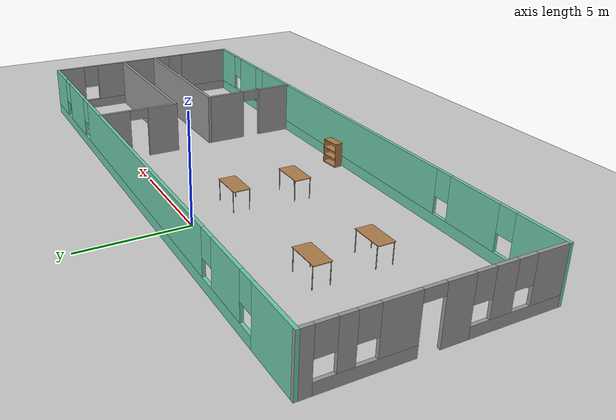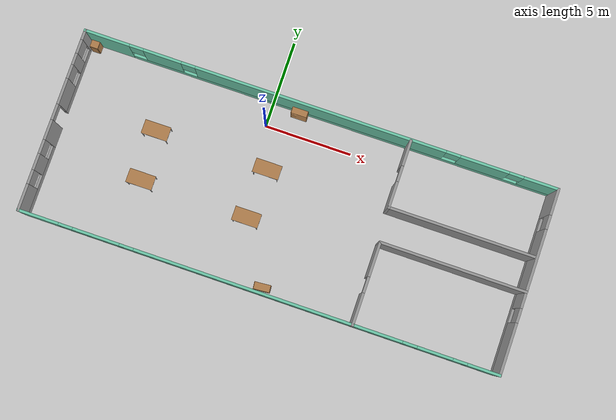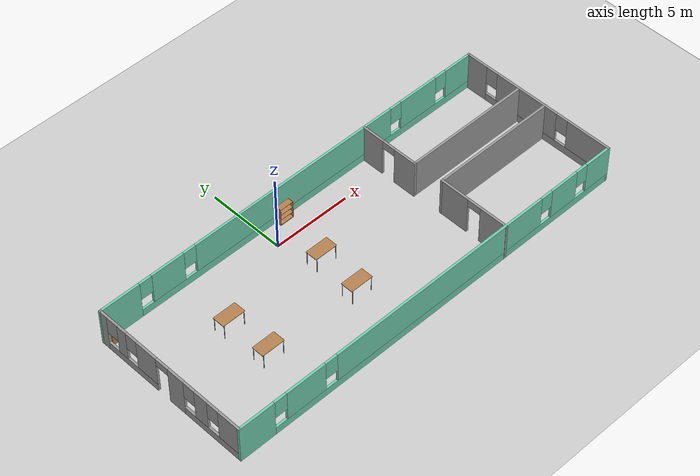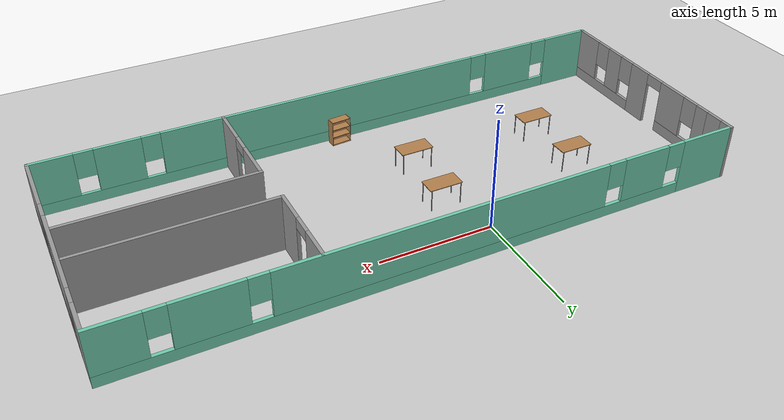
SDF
<sdf version="1.6">
 <world name="default">
  <light name="sun" type="directional">
   <pose>0 0 15 0 -0 0</pose>
   <diffuse>0.8 0.8 0.8 1</diffuse>
   <specular>0.2 0.2 0.2 1</specular>
   <attenuation>
    <range>1000</range>
    <constant>0.9</constant>
    <linear>0.01</linear>
    <quadratic>0.001</quadratic>
   </attenuation>
   <direction>-0.5 0.1 -0.9</direction>
  </light>
  <model name="ground_plane">
   <static>1</static>
   <link name="link">
    <collision name="collision">
     <geometry><plane><normal>0 0 1</normal><size>100 100</size></plane></geometry>
     <surface><friction><ode><mu>100</mu><mu2>50</mu2></ode></friction></surface>
    </collision>
    <visual name="visual">
     <transparency>1</transparency>
     <cast_shadows>0</cast_shadows>
     <geometry><plane><normal>0 0 1</normal><size>100 100</size></plane></geometry>
     <material>
      <script><uri>file://media/materials/scripts/gazebo.material</uri><name>Gazebo/Grey</name></script>
     </material>
    </visual>
   </link>
  </model>
  <gravity>0 0 -9.8</gravity>
  <magnetic_field>6e-06 2.3e-05 -4.2e-05</magnetic_field>
  <atmosphere type="adiabatic"/>
  <physics name="default_physics" default="0" type="ode">
   <max_step_size>0.001</max_step_size>
   <real_time_factor>1</real_time_factor>
   <real_time_update_rate>1000</real_time_update_rate>
  </physics>
  <scene><ambient>0.4 0.4 0.4 1</ambient><background>0.7 0.7 0.7 1</background><shadows>1</shadows></scene>
  <spherical_coordinates>
   <surface_model>EARTH_WGS84</surface_model>
   <latitude_deg>0</latitude_deg>
   <longitude_deg>0</longitude_deg>
   <elevation>0</elevation>
   <heading_deg>0</heading_deg>
  </spherical_coordinates>
  <model name="custom_office">
   <pose>2.64697 -3.7781 0 0 -0 0</pose>
   <link name="Wall_0">
    <pose>-13.4273 0.004761 0 0 0 -1.5708</pose>
    <visual name="Wall_0_Visual_0">
     <pose>-4.93859 0 1.25 0 -0 0</pose>
     <geometry><box><size>0.622825 0.15 2.5</size></box></geometry>
     <material>
      <script><uri>file://media/materials/scripts/gazebo.material</uri><name>Gazebo/Grey</name></script>
      <ambient>1 1 1 1</ambient>
     </material>
     <meta><layer>0</layer></meta>
    </visual>
    <collision name="Wall_0_Collision_0">
     <geometry><box><size>0.622825 0.15 2.5</size></box></geometry>
     <pose>-4.93859 0 1.25 0 -0 0</pose>
    </collision>
    <visual name="Wall_0_Visual_1">
     <pose>0.599161 0 1.25 0 -0 0</pose>
     <geometry><box><size>1.14501 0.15 2.5</size></box></geometry>
     <material>
      <script><uri>file://media/materials/scripts/gazebo.material</uri><name>Gazebo/Grey</name></script>
      <ambient>1 1 1 1</ambient>
     </material>
     <meta><layer>0</layer></meta>
    </visual>
    <collision name="Wall_0_Collision_1">
     <geometry><box><size>1.14501 0.15 2.5</size></box></geometry>
     <pose>0.599161 0 1.25 0 -0 0</pose>
    </collision>
    <visual name="Wall_0_Visual_2">
     <pose>-2.75026 0 0.25 0 -0 0</pose>
     <geometry><box><size>3.75383 0.15 0.5</size></box></geometry>
     <material>
      <script><uri>file://media/materials/scripts/gazebo.material</uri><name>Gazebo/Grey</name></script>
      <ambient>1 1 1 1</ambient>
     </material>
     <meta><layer>0</layer></meta>
    </visual>
    <collision name="Wall_0_Collision_2">
     <geometry><box><size>3.75383 0.15 0.5</size></box></geometry>
     <pose>-2.75026 0 0.25 0 -0 0</pose>
    </collision>
    <visual name="Wall_0_Visual_3">
     <pose>3.21083 0 0.25 0 -0 0</pose>
     <geometry><box><size>4.07833 0.15 0.5</size></box></geometry>
     <material>
      <script><uri>file://media/materials/scripts/gazebo.material</uri><name>Gazebo/Grey</name></script>
      <ambient>1 1 1 1</ambient>
     </material>
     <meta><layer>0</layer></meta>
    </visual>
    <collision name="Wall_0_Collision_3">
     <geometry><box><size>4.07833 0.15 0.5</size></box></geometry>
     <pose>3.21083 0 0.25 0 -0 0</pose>
    </collision>
    <visual name="Wall_0_Visual_4">
     <pose>-3.49567 0 1.5 0 -0 0</pose>
     <geometry><box><size>0.663011 0.15 2</size></box></geometry>
     <material>
      <script><uri>file://media/materials/scripts/gazebo.material</uri><name>Gazebo/Grey</name></script>
      <ambient>1 1 1 1</ambient>
     </material>
     <meta><layer>0</layer></meta>
    </visual>
    <collision name="Wall_0_Collision_4">
     <geometry><box><size>0.663011 0.15 2</size></box></geometry>
     <pose>-3.49567 0 1.5 0 -0 0</pose>
    </collision>
    <visual name="Wall_0_Visual_5">
     <pose>-1.61875 0 1.5 0 -0 0</pose>
     <geometry><box><size>1.49082 0.15 2</size></box></geometry>
     <material>
      <script><uri>file://media/materials/scripts/gazebo.material</uri><name>Gazebo/Grey</name></script>
      <ambient>1 1 1 1</ambient>
     </material>
     <meta><layer>0</layer></meta>
    </visual>
    <collision name="Wall_0_Collision_5">
     <geometry><box><size>1.49082 0.15 2</size></box></geometry>
     <pose>-1.61875 0 1.5 0 -0 0</pose>
    </collision>
    <visual name="Wall_0_Visual_6">
     <pose>-1.61875 0 1.5 0 -0 0</pose>
     <geometry><box><size>1.49082 0.15 2</size></box></geometry>
     <material>
      <script><uri>file://media/materials/scripts/gazebo.material</uri><name>Gazebo/Grey</name></script>
      <ambient>1 1 1 1</ambient>
     </material>
     <meta><layer>0</layer></meta>
    </visual>
    <collision name="Wall_0_Collision_6">
     <geometry><box><size>1.49082 0.15 2</size></box></geometry>
     <pose>-1.61875 0 1.5 0 -0 0</pose>
    </collision>
    <visual name="Wall_0_Visual_7">
     <pose>2.43617 0 1.5 0 -0 0</pose>
     <geometry><box><size>0.929013 0.15 2</size></box></geometry>
     <material>
      <script><uri>file://media/materials/scripts/gazebo.material</uri><name>Gazebo/Grey</name></script>
      <ambient>1 1 1 1</ambient>
     </material>
     <meta><layer>0</layer></meta>
    </visual>
    <collision name="Wall_0_Collision_7">
     <geometry><box><size>0.929013 0.15 2</size></box></geometry>
     <pose>2.43617 0 1.5 0 -0 0</pose>
    </collision>
    <visual name="Wall_0_Visual_8">
     <pose>4.47534 0 1.5 0 -0 0</pose>
     <geometry><box><size>1.54932 0.15 2</size></box></geometry>
     <material>
      <script><uri>file://media/materials/scripts/gazebo.material</uri><name>Gazebo/Grey</name></script>
      <ambient>1 1 1 1</ambient>
     </material>
     <meta><layer>0</layer></meta>
    </visual>
    <collision name="Wall_0_Collision_8">
     <geometry><box><size>1.54932 0.15 2</size></box></geometry>
     <pose>4.47534 0 1.5 0 -0 0</pose>
    </collision>
    <visual name="Wall_0_Visual_9">
     <pose>-4.22717 0 1.9 0 -0 0</pose>
     <geometry><box><size>0.8 0.15 1.2</size></box></geometry>
     <material>
      <script><uri>file://media/materials/scripts/gazebo.material</uri><name>Gazebo/Grey</name></script>
      <ambient>1 1 1 1</ambient>
     </material>
     <meta><layer>0</layer></meta>
    </visual>
    <collision name="Wall_0_Collision_9">
     <geometry><box><size>0.8 0.15 1.2</size></box></geometry>
     <pose>-4.22717 0 1.9 0 -0 0</pose>
    </collision>
    <visual name="Wall_0_Visual_10">
     <pose>1.57167 0 1.9 0 -0 0</pose>
     <geometry><box><size>0.8 0.15 1.2</size></box></geometry>
     <material>
      <script><uri>file://media/materials/scripts/gazebo.material</uri><name>Gazebo/Grey</name></script>
      <ambient>1 1 1 1</ambient>
     </material>
     <meta><layer>0</layer></meta>
    </visual>
    <collision name="Wall_0_Collision_10">
     <geometry><box><size>0.8 0.15 1.2</size></box></geometry>
     <pose>1.57167 0 1.9 0 -0 0</pose>
    </collision>
    <visual name="Wall_0_Visual_11">
     <pose>-2.76416 0 1.9 0 -0 0</pose>
     <geometry><box><size>0.8 0.15 1.2</size></box></geometry>
     <material>
      <script><uri>file://media/materials/scripts/gazebo.material</uri><name>Gazebo/Grey</name></script>
      <ambient>1 1 1 1</ambient>
     </material>
     <meta><layer>0</layer></meta>
    </visual>
    <collision name="Wall_0_Collision_11">
     <geometry><box><size>0.8 0.15 1.2</size></box></geometry>
     <pose>-2.76416 0 1.9 0 -0 0</pose>
    </collision>
    <visual name="Wall_0_Visual_12">
     <pose>3.30068 0 1.9 0 -0 0</pose>
     <geometry><box><size>0.8 0.15 1.2</size></box></geometry>
     <material>
      <script><uri>file://media/materials/scripts/gazebo.material</uri><name>Gazebo/Grey</name></script>
      <ambient>1 1 1 1</ambient>
     </material>
     <meta><layer>0</layer></meta>
    </visual>
    <collision name="Wall_0_Collision_12">
     <geometry><box><size>0.8 0.15 1.2</size></box></geometry>
     <pose>3.30068 0 1.9 0 -0 0</pose>
    </collision>
    <visual name="Wall_0_Visual_13">
     <pose>-0.423347 0 2.25 0 -0 0</pose>
     <geometry><box><size>0.9 0.15 0.5</size></box></geometry>
     <material>
      <script><uri>file://media/materials/scripts/gazebo.material</uri><name>Gazebo/Grey</name></script>
      <ambient>1 1 1 1</ambient>
     </material>
     <meta><layer>0</layer></meta>
    </visual>
    <collision name="Wall_0_Collision_13">
     <geometry><box><size>0.9 0.15 0.5</size></box></geometry>
     <pose>-0.423347 0 2.25 0 -0 0</pose>
    </collision>
    <visual name="Wall_0_Visual_14">
     <pose>-0.423347 0 2.25 0 -0 0</pose>
     <geometry><box><size>0.9 0.15 0.5</size></box></geometry>
     <material>
      <script><uri>file://media/materials/scripts/gazebo.material</uri><name>Gazebo/Grey</name></script>
      <ambient>1 1 1 1</ambient>
     </material>
     <meta><layer>0</layer></meta>
    </visual>
    <collision name="Wall_0_Collision_14">
     <geometry><box><size>0.9 0.15 0.5</size></box></geometry>
     <pose>-0.423347 0 2.25 0 -0 0</pose>
    </collision>
   </link>
   <link name="Wall_1">
    <pose>-0.002318 -5.17024 0 0 -0 0</pose>
    <visual name="Wall_1_Visual_0">
     <pose>-12.3241 0 1.25 0 -0 0</pose>
     <geometry><box><size>2.35187 0.15 2.5</size></box></geometry>
     <material>
      <script><uri>file://media/materials/scripts/gazebo.material</uri><name>Gazebo/Grey</name></script>
      <ambient>0.435294 0.796078 0.67451 1</ambient>
     </material>
     <meta><layer>0</layer></meta>
    </visual>
    <collision name="Wall_1_Collision_0">
     <geometry><box><size>2.35187 0.15 2.5</size></box></geometry>
     <pose>-12.3241 0 1.25 0 -0 0</pose>
    </collision>
    <visual name="Wall_1_Visual_1">
     <pose>1.17594 0 0.25 0 -0 0</pose>
     <geometry><box><size>24.6481 0.15 0.5</size></box></geometry>
     <material>
      <script><uri>file://media/materials/scripts/gazebo.material</uri><name>Gazebo/Grey</name></script>
      <ambient>0.435294 0.796078 0.67451 1</ambient>
     </material>
     <meta><layer>0</layer></meta>
    </visual>
    <collision name="Wall_1_Collision_1">
     <geometry><box><size>24.6481 0.15 0.5</size></box></geometry>
     <pose>1.17594 0 0.25 0 -0 0</pose>
    </collision>
    <visual name="Wall_1_Visual_2">
     <pose>-9.03242 0 1.5 0 -0 0</pose>
     <geometry><box><size>2.63143 0.15 2</size></box></geometry>
     <material>
      <script><uri>file://media/materials/scripts/gazebo.material</uri><name>Gazebo/Grey</name></script>
      <ambient>0.435294 0.796078 0.67451 1</ambient>
     </material>
     <meta><layer>0</layer></meta>
    </visual>
    <collision name="Wall_1_Collision_2">
     <geometry><box><size>2.63143 0.15 2</size></box></geometry>
     <pose>-9.03242 0 1.5 0 -0 0</pose>
    </collision>
    <visual name="Wall_1_Visual_3">
     <pose>0.583556 0 1.5 0 -0 0</pose>
     <geometry><box><size>15.0005 0.15 2</size></box></geometry>
     <material>
      <script><uri>file://media/materials/scripts/gazebo.material</uri><name>Gazebo/Grey</name></script>
      <ambient>0.435294 0.796078 0.67451 1</ambient>
     </material>
     <meta><layer>0</layer></meta>
    </visual>
    <collision name="Wall_1_Collision_3">
     <geometry><box><size>15.0005 0.15 2</size></box></geometry>
     <pose>0.583556 0 1.5 0 -0 0</pose>
    </collision>
    <visual name="Wall_1_Visual_4">
     <pose>9.86703 0 1.5 0 -0 0</pose>
     <geometry><box><size>1.96642 0.15 2</size></box></geometry>
     <material>
      <script><uri>file://media/materials/scripts/gazebo.material</uri><name>Gazebo/Grey</name></script>
      <ambient>0.435294 0.796078 0.67451 1</ambient>
     </material>
     <meta><layer>0</layer></meta>
    </visual>
    <collision name="Wall_1_Collision_4">
     <geometry><box><size>1.96642 0.15 2</size></box></geometry>
     <pose>9.86703 0 1.5 0 -0 0</pose>
    </collision>
    <visual name="Wall_1_Visual_5">
     <pose>12.5751 0 1.5 0 -0 0</pose>
     <geometry><box><size>1.84976 0.15 2</size></box></geometry>
     <material>
      <script><uri>file://media/materials/scripts/gazebo.material</uri><name>Gazebo/Grey</name></script>
      <ambient>0.435294 0.796078 0.67451 1</ambient>
     </material>
     <meta><layer>0</layer></meta>
    </visual>
    <collision name="Wall_1_Collision_5">
     <geometry><box><size>1.84976 0.15 2</size></box></geometry>
     <pose>12.5751 0 1.5 0 -0 0</pose>
    </collision>
    <visual name="Wall_1_Visual_6">
     <pose>-10.7481 0 1.9 0 -0 0</pose>
     <geometry><box><size>0.8 0.15 1.2</size></box></geometry>
     <material>
      <script><uri>file://media/materials/scripts/gazebo.material</uri><name>Gazebo/Grey</name></script>
      <ambient>0.435294 0.796078 0.67451 1</ambient>
     </material>
     <meta><layer>0</layer></meta>
    </visual>
    <collision name="Wall_1_Collision_6">
     <geometry><box><size>0.8 0.15 1.2</size></box></geometry>
     <pose>-10.7481 0 1.9 0 -0 0</pose>
    </collision>
    <visual name="Wall_1_Visual_7">
     <pose>-7.3167 0 1.9 0 -0 0</pose>
     <geometry><box><size>0.8 0.15 1.2</size></box></geometry>
     <material>
      <script><uri>file://media/materials/scripts/gazebo.material</uri><name>Gazebo/Grey</name></script>
      <ambient>0.435294 0.796078 0.67451 1</ambient>
     </material>
     <meta><layer>0</layer></meta>
    </visual>
    <collision name="Wall_1_Collision_7">
     <geometry><box><size>0.8 0.15 1.2</size></box></geometry>
     <pose>-7.3167 0 1.9 0 -0 0</pose>
    </collision>
    <visual name="Wall_1_Visual_8">
     <pose>8.48381 0 1.9 0 -0 0</pose>
     <geometry><box><size>0.8 0.15 1.2</size></box></geometry>
     <material>
      <script><uri>file://media/materials/scripts/gazebo.material</uri><name>Gazebo/Grey</name></script>
      <ambient>0.435294 0.796078 0.67451 1</ambient>
     </material>
     <meta><layer>0</layer></meta>
    </visual>
    <collision name="Wall_1_Collision_8">
     <geometry><box><size>0.8 0.15 1.2</size></box></geometry>
     <pose>8.48381 0 1.9 0 -0 0</pose>
    </collision>
    <visual name="Wall_1_Visual_9">
     <pose>11.2502 0 1.9 0 -0 0</pose>
     <geometry><box><size>0.8 0.15 1.2</size></box></geometry>
     <material>
      <script><uri>file://media/materials/scripts/gazebo.material</uri><name>Gazebo/Grey</name></script>
      <ambient>0.435294 0.796078 0.67451 1</ambient>
     </material>
     <meta><layer>0</layer></meta>
    </visual>
    <collision name="Wall_1_Collision_9">
     <geometry><box><size>0.8 0.15 1.2</size></box></geometry>
     <pose>11.2502 0 1.9 0 -0 0</pose>
    </collision>
   </link>
   <link name="Wall_10">
    <pose>-0.002318 5.17976 0 0 -0 0</pose>
    <visual name="Wall_10_Visual_0">
     <pose>-12.1911 0 1.25 0 -0 0</pose>
     <geometry><box><size>2.61787 0.15 2.5</size></box></geometry>
     <material>
      <script><uri>file://media/materials/scripts/gazebo.material</uri><name>Gazebo/Grey</name></script>
      <ambient>0.435294 0.796078 0.67451 1</ambient>
     </material>
     <meta><layer>0</layer></meta>
    </visual>
    <collision name="Wall_10_Collision_0">
     <geometry><box><size>2.61787 0.15 2.5</size></box></geometry>
     <pose>-12.1911 0 1.25 0 -0 0</pose>
    </collision>
    <visual name="Wall_10_Visual_1">
     <pose>1.30894 0 0.25 0 -0 0</pose>
     <geometry><box><size>24.3821 0.15 0.5</size></box></geometry>
     <material>
      <script><uri>file://media/materials/scripts/gazebo.material</uri><name>Gazebo/Grey</name></script>
      <ambient>0.435294 0.796078 0.67451 1</ambient>
     </material>
     <meta><layer>0</layer></meta>
    </visual>
    <collision name="Wall_10_Collision_1">
     <geometry><box><size>24.3821 0.15 0.5</size></box></geometry>
     <pose>1.30894 0 0.25 0 -0 0</pose>
    </collision>
    <visual name="Wall_10_Visual_2">
     <pose>-8.99251 0 1.5 0 -0 0</pose>
     <geometry><box><size>2.17922 0.15 2</size></box></geometry>
     <material>
      <script><uri>file://media/materials/scripts/gazebo.material</uri><name>Gazebo/Grey</name></script>
      <ambient>0.435294 0.796078 0.67451 1</ambient>
     </material>
     <meta><layer>0</layer></meta>
    </visual>
    <collision name="Wall_10_Collision_2">
     <geometry><box><size>2.17922 0.15 2</size></box></geometry>
     <pose>-8.99251 0 1.5 0 -0 0</pose>
    </collision>
    <visual name="Wall_10_Visual_3">
     <pose>0.024952 0 1.5 0 -0 0</pose>
     <geometry><box><size>14.2557 0.15 2</size></box></geometry>
     <material>
      <script><uri>file://media/materials/scripts/gazebo.material</uri><name>Gazebo/Grey</name></script>
      <ambient>0.435294 0.796078 0.67451 1</ambient>
     </material>
     <meta><layer>0</layer></meta>
    </visual>
    <collision name="Wall_10_Collision_3">
     <geometry><box><size>14.2557 0.15 2</size></box></geometry>
     <pose>0.024952 0 1.5 0 -0 0</pose>
    </collision>
    <visual name="Wall_10_Visual_4">
     <pose>9.32172 0 1.5 0 -0 0</pose>
     <geometry><box><size>2.73783 0.15 2</size></box></geometry>
     <material>
      <script><uri>file://media/materials/scripts/gazebo.material</uri><name>Gazebo/Grey</name></script>
      <ambient>0.435294 0.796078 0.67451 1</ambient>
     </material>
     <meta><layer>0</layer></meta>
    </visual>
    <collision name="Wall_10_Collision_4">
     <geometry><box><size>2.73783 0.15 2</size></box></geometry>
     <pose>9.32172 0 1.5 0 -0 0</pose>
    </collision>
    <visual name="Wall_10_Visual_5">
     <pose>12.4953 0 1.5 0 -0 0</pose>
     <geometry><box><size>2.00936 0.15 2</size></box></geometry>
     <material>
      <script><uri>file://media/materials/scripts/gazebo.material</uri><name>Gazebo/Grey</name></script>
      <ambient>0.435294 0.796078 0.67451 1</ambient>
     </material>
     <meta><layer>0</layer></meta>
    </visual>
    <collision name="Wall_10_Collision_5">
     <geometry><box><size>2.00936 0.15 2</size></box></geometry>
     <pose>12.4953 0 1.5 0 -0 0</pose>
    </collision>
    <visual name="Wall_10_Visual_6">
     <pose>-10.4821 0 1.9 0 -0 0</pose>
     <geometry><box><size>0.8 0.15 1.2</size></box></geometry>
     <material>
      <script><uri>file://media/materials/scripts/gazebo.material</uri><name>Gazebo/Grey</name></script>
      <ambient>0.435294 0.796078 0.67451 1</ambient>
     </material>
     <meta><layer>0</layer></meta>
    </visual>
    <collision name="Wall_10_Collision_6">
     <geometry><box><size>0.8 0.15 1.2</size></box></geometry>
     <pose>-10.4821 0 1.9 0 -0 0</pose>
    </collision>
    <visual name="Wall_10_Visual_7">
     <pose>-7.5029 0 1.9 0 -0 0</pose>
     <geometry><box><size>0.8 0.15 1.2</size></box></geometry>
     <material>
      <script><uri>file://media/materials/scripts/gazebo.material</uri><name>Gazebo/Grey</name></script>
      <ambient>0.435294 0.796078 0.67451 1</ambient>
     </material>
     <meta><layer>0</layer></meta>
    </visual>
    <collision name="Wall_10_Collision_7">
     <geometry><box><size>0.8 0.15 1.2</size></box></geometry>
     <pose>-7.5029 0 1.9 0 -0 0</pose>
    </collision>
    <visual name="Wall_10_Visual_8">
     <pose>7.55281 0 1.9 0 -0 0</pose>
     <geometry><box><size>0.8 0.15 1.2</size></box></geometry>
     <material>
      <script><uri>file://media/materials/scripts/gazebo.material</uri><name>Gazebo/Grey</name></script>
      <ambient>0.435294 0.796078 0.67451 1</ambient>
     </material>
     <meta><layer>0</layer></meta>
    </visual>
    <collision name="Wall_10_Collision_8">
     <geometry><box><size>0.8 0.15 1.2</size></box></geometry>
     <pose>7.55281 0 1.9 0 -0 0</pose>
    </collision>
    <visual name="Wall_10_Visual_9">
     <pose>11.0906 0 1.9 0 -0 0</pose>
     <geometry><box><size>0.8 0.15 1.2</size></box></geometry>
     <material>
      <script><uri>file://media/materials/scripts/gazebo.material</uri><name>Gazebo/Grey</name></script>
      <ambient>0.435294 0.796078 0.67451 1</ambient>
     </material>
     <meta><layer>0</layer></meta>
    </visual>
    <collision name="Wall_10_Collision_9">
     <geometry><box><size>0.8 0.15 1.2</size></box></geometry>
     <pose>11.0906 0 1.9 0 -0 0</pose>
    </collision>
   </link>
   <link name="Wall_12">
    <pose>13.4227 0.004761 0 0 0 -1.5708</pose>
    <visual name="Wall_12_Visual_0">
     <pose>-4.48638 0 1.25 0 -0 0</pose>
     <geometry><box><size>1.52723 0.15 2.5</size></box></geometry>
     <material>
      <script><uri>file://media/materials/scripts/gazebo.material</uri><name>Gazebo/Grey</name></script>
      <ambient>1 1 1 1</ambient>
     </material>
     <meta><layer>0</layer></meta>
    </visual>
    <collision name="Wall_12_Collision_0">
     <geometry><box><size>1.52723 0.15 2.5</size></box></geometry>
     <pose>-4.48638 0 1.25 0 -0 0</pose>
    </collision>
    <visual name="Wall_12_Visual_1">
     <pose>0.763616 0 0.25 0 -0 0</pose>
     <geometry><box><size>8.97277 0.15 0.5</size></box></geometry>
     <material>
      <script><uri>file://media/materials/scripts/gazebo.material</uri><name>Gazebo/Grey</name></script>
      <ambient>1 1 1 1</ambient>
     </material>
     <meta><layer>0</layer></meta>
    </visual>
    <collision name="Wall_12_Collision_1">
     <geometry><box><size>8.97277 0.15 0.5</size></box></geometry>
     <pose>0.763616 0 0.25 0 -0 0</pose>
    </collision>
    <visual name="Wall_12_Visual_2">
     <pose>-0.715949 0 1.5 0 -0 0</pose>
     <geometry><box><size>4.41364 0.15 2</size></box></geometry>
     <material>
      <script><uri>file://media/materials/scripts/gazebo.material</uri><name>Gazebo/Grey</name></script>
      <ambient>1 1 1 1</ambient>
     </material>
     <meta><layer>0</layer></meta>
    </visual>
    <collision name="Wall_12_Collision_2">
     <geometry><box><size>4.41364 0.15 2</size></box></geometry>
     <pose>-0.715949 0 1.5 0 -0 0</pose>
    </collision>
    <visual name="Wall_12_Visual_3">
     <pose>3.77043 0 1.5 0 -0 0</pose>
     <geometry><box><size>2.95913 0.15 2</size></box></geometry>
     <material>
      <script><uri>file://media/materials/scripts/gazebo.material</uri><name>Gazebo/Grey</name></script>
      <ambient>1 1 1 1</ambient>
     </material>
     <meta><layer>0</layer></meta>
    </visual>
    <collision name="Wall_12_Collision_3">
     <geometry><box><size>2.95913 0.15 2</size></box></geometry>
     <pose>3.77043 0 1.5 0 -0 0</pose>
    </collision>
    <visual name="Wall_12_Visual_4">
     <pose>-3.32277 0 1.9 0 -0 0</pose>
     <geometry><box><size>0.8 0.15 1.2</size></box></geometry>
     <material>
      <script><uri>file://media/materials/scripts/gazebo.material</uri><name>Gazebo/Grey</name></script>
      <ambient>1 1 1 1</ambient>
     </material>
     <meta><layer>0</layer></meta>
    </visual>
    <collision name="Wall_12_Collision_4">
     <geometry><box><size>0.8 0.15 1.2</size></box></geometry>
     <pose>-3.32277 0 1.9 0 -0 0</pose>
    </collision>
    <visual name="Wall_12_Visual_5">
     <pose>1.89087 0 1.9 0 -0 0</pose>
     <geometry><box><size>0.8 0.15 1.2</size></box></geometry>
     <material>
      <script><uri>file://media/materials/scripts/gazebo.material</uri><name>Gazebo/Grey</name></script>
      <ambient>1 1 1 1</ambient>
     </material>
     <meta><layer>0</layer></meta>
    </visual>
    <collision name="Wall_12_Collision_5">
     <geometry><box><size>0.8 0.15 1.2</size></box></geometry>
     <pose>1.89087 0 1.9 0 -0 0</pose>
    </collision>
   </link>
   <link name="Wall_14">
    <collision name="Wall_14_Collision">
     <geometry><box><size>8.25 0.15 2.5</size></box></geometry>
     <pose>0 0 1.25 0 -0 0</pose>
    </collision>
    <visual name="Wall_14_Visual">
     <pose>0 0 1.25 0 -0 0</pose>
     <geometry><box><size>8.25 0.15 2.5</size></box></geometry>
     <material>
      <script><uri>file://media/materials/scripts/gazebo.material</uri><name>Gazebo/Grey</name></script>
      <ambient>1 1 1 1</ambient>
     </material>
     <meta><layer>0</layer></meta>
    </visual>
    <pose>9.37732 -0.579761 0 0 -0 3.14159</pose>
   </link>
   <link name="Wall_15">
    <pose>5.32732 -2.87976 0 0 0 -1.5708</pose>
    <visual name="Wall_15_Visual_0">
     <pose>-1.37732 0 1.25 0 -0 0</pose>
     <geometry><box><size>1.99536 0.15 2.5</size></box></geometry>
     <material>
      <script><uri>file://media/materials/scripts/gazebo.material</uri><name>Gazebo/Grey</name></script>
      <ambient>1 1 1 1</ambient>
     </material>
     <meta><layer>0</layer></meta>
    </visual>
    <collision name="Wall_15_Collision_0">
     <geometry><box><size>1.99536 0.15 2.5</size></box></geometry>
     <pose>-1.37732 0 1.25 0 -0 0</pose>
    </collision>
    <visual name="Wall_15_Visual_1">
     <pose>1.44768 0 1.25 0 -0 0</pose>
     <geometry><box><size>1.85464 0.15 2.5</size></box></geometry>
     <material>
      <script><uri>file://media/materials/scripts/gazebo.material</uri><name>Gazebo/Grey</name></script>
      <ambient>1 1 1 1</ambient>
     </material>
     <meta><layer>0</layer></meta>
    </visual>
    <collision name="Wall_15_Collision_1">
     <geometry><box><size>1.85464 0.15 2.5</size></box></geometry>
     <pose>1.44768 0 1.25 0 -0 0</pose>
    </collision>
    <visual name="Wall_15_Visual_2">
     <pose>0.070357 0 2.25 0 -0 0</pose>
     <geometry><box><size>0.9 0.15 0.5</size></box></geometry>
     <material>
      <script><uri>file://media/materials/scripts/gazebo.material</uri><name>Gazebo/Grey</name></script>
      <ambient>1 1 1 1</ambient>
     </material>
     <meta><layer>0</layer></meta>
    </visual>
    <collision name="Wall_15_Collision_2">
     <geometry><box><size>0.9 0.15 0.5</size></box></geometry>
     <pose>0.070357 0 2.25 0 -0 0</pose>
    </collision>
   </link>
   <link name="Wall_18">
    <pose>5.16969 3.25476 0 0 0 -1.5708</pose>
    <visual name="Wall_18_Visual_0">
     <pose>-1.22148 0 1.25 0 -0 0</pose>
     <geometry><box><size>1.55703 0.15 2.5</size></box></geometry>
     <material>
      <script><uri>file://media/materials/scripts/gazebo.material</uri><name>Gazebo/Grey</name></script>
      <ambient>1 1 1 1</ambient>
     </material>
     <meta><layer>0</layer></meta>
    </visual>
    <collision name="Wall_18_Collision_0">
     <geometry><box><size>1.55703 0.15 2.5</size></box></geometry>
     <pose>-1.22148 0 1.25 0 -0 0</pose>
    </collision>
    <visual name="Wall_18_Visual_1">
     <pose>1.22852 0 1.25 0 -0 0</pose>
     <geometry><box><size>1.54297 0.15 2.5</size></box></geometry>
     <material>
      <script><uri>file://media/materials/scripts/gazebo.material</uri><name>Gazebo/Grey</name></script>
      <ambient>1 1 1 1</ambient>
     </material>
     <meta><layer>0</layer></meta>
    </visual>
    <collision name="Wall_18_Collision_1">
     <geometry><box><size>1.54297 0.15 2.5</size></box></geometry>
     <pose>1.22852 0 1.25 0 -0 0</pose>
    </collision>
    <visual name="Wall_18_Visual_2">
     <pose>0.007032 0 2.25 0 -0 0</pose>
     <geometry><box><size>0.9 0.15 0.5</size></box></geometry>
     <material>
      <script><uri>file://media/materials/scripts/gazebo.material</uri><name>Gazebo/Grey</name></script>
      <ambient>1 1 1 1</ambient>
     </material>
     <meta><layer>0</layer></meta>
    </visual>
    <collision name="Wall_18_Collision_2">
     <geometry><box><size>0.9 0.15 0.5</size></box></geometry>
     <pose>0.007032 0 2.25 0 -0 0</pose>
    </collision>
   </link>
   <link name="Wall_22">
    <collision name="Wall_22_Collision">
     <geometry><box><size>8.25 0.15 2.5</size></box></geometry>
     <pose>0 0 1.25 0 -0 0</pose>
    </collision>
    <visual name="Wall_22_Visual">
     <pose>0 0 1.25 0 -0 0</pose>
     <geometry><box><size>8.25 0.15 2.5</size></box></geometry>
     <material>
      <script><uri>file://media/materials/scripts/gazebo.material</uri><name>Gazebo/Grey</name></script>
      <ambient>1 1 1 1</ambient>
     </material>
     <meta><layer>0</layer></meta>
    </visual>
    <pose>9.21969 1.32976 0 0 -0 0</pose>
   </link>
   <static>1</static>
  </model>
  <model name="table">
   <static>1</static>
   <link name="link">
    <collision name="surface">
     <pose>0 0 1 0 -0 0</pose>
     <geometry><box><size>1.5 0.8 0.03</size></box></geometry>
     <surface><friction><ode><mu>0.6</mu><mu2>0.6</mu2></ode></friction></surface>
    </collision>
    <visual name="visual1">
     <pose>0 0 1 0 -0 0</pose>
     <geometry><box><size>1.5 0.8 0.03</size></box></geometry>
     <material>
      <script><uri>file://media/materials/scripts/gazebo.material</uri><name>Gazebo/Wood</name></script>
     </material>
    </visual>
    <collision name="front_left_leg">
     <pose>0.68 0.38 0.5 0 -0 0</pose>
     <geometry><cylinder><radius>0.02</radius><length>1</length></cylinder></geometry>
    </collision>
    <visual name="front_left_leg">
     <pose>0.68 0.38 0.5 0 -0 0</pose>
     <geometry><cylinder><radius>0.02</radius><length>1</length></cylinder></geometry>
     <material>
      <script><uri>file://media/materials/scripts/gazebo.material</uri><name>Gazebo/Grey</name></script>
     </material>
    </visual>
    <collision name="front_right_leg">
     <pose>0.68 -0.38 0.5 0 -0 0</pose>
     <geometry><cylinder><radius>0.02</radius><length>1</length></cylinder></geometry>
    </collision>
    <visual name="front_right_leg">
     <pose>0.68 -0.38 0.5 0 -0 0</pose>
     <geometry><cylinder><radius>0.02</radius><length>1</length></cylinder></geometry>
     <material>
      <script><uri>file://media/materials/scripts/gazebo.material</uri><name>Gazebo/Grey</name></script>
     </material>
    </visual>
    <collision name="back_right_leg">
     <pose>-0.68 -0.38 0.5 0 -0 0</pose>
     <geometry><cylinder><radius>0.02</radius><length>1</length></cylinder></geometry>
    </collision>
    <visual name="back_right_leg">
     <pose>-0.68 -0.38 0.5 0 -0 0</pose>
     <geometry><cylinder><radius>0.02</radius><length>1</length></cylinder></geometry>
     <material>
      <script><uri>file://media/materials/scripts/gazebo.material</uri><name>Gazebo/Grey</name></script>
     </material>
    </visual>
    <collision name="back_left_leg">
     <pose>-0.68 0.38 0.5 0 -0 0</pose>
     <geometry><cylinder><radius>0.02</radius><length>1</length></cylinder></geometry>
    </collision>
    <visual name="back_left_leg">
     <pose>-0.68 0.38 0.5 0 -0 0</pose>
     <geometry><cylinder><radius>0.02</radius><length>1</length></cylinder></geometry>
     <material>
      <script><uri>file://media/materials/scripts/gazebo.material</uri><name>Gazebo/Grey</name></script>
     </material>
    </visual>
   </link>
   <pose>-5.54566 -2.33773 0 0 -0 0</pose>
  </model>
  <model name="cabinet">
   <static>1</static>
   <link name="cabinet_bottom_plate">
    <inertial>
     <pose>0 0 -1 0 -0 0</pose>
     <inertia><ixx>2.05</ixx><ixy>0</ixy><ixz>0</ixz><iyy>2.05</iyy><iyz>0</iyz><izz>2.05</izz></inertia>
     <mass>25</mass>
    </inertial>
    <collision name="cabinet_bottom_plate_geom">
     <pose>0 0 0.01 0 -0 0</pose>
     <geometry><box><size>0.45 0.45 0.02</size></box></geometry>
    </collision>
    <visual name="cabinet_bottom_plate_geom_visual">
     <pose>0 0 0.01 0 -0 0</pose>
     <geometry><box><size>0.45 0.45 0.02</size></box></geometry>
     <material>
      <script><uri>file://media/materials/scripts/gazebo.material</uri><name>Gazebo/Wood</name></script>
     </material>
    </visual>
    <collision name="cabinet_bottom_plate_geom_cabinet_back_plate">
     <pose>0.235 0 0.51 0 -0 0</pose>
     <geometry><box><size>0.02 0.45 1.02</size></box></geometry>
    </collision>
    <visual name="cabinet_bottom_plate_geom_cabinet_back_plate_visual">
     <pose>0.235 0 0.51 0 -0 0</pose>
     <geometry><box><size>0.02 0.45 1.02</size></box></geometry>
     <material>
      <script><uri>file://media/materials/scripts/gazebo.material</uri><name>Gazebo/Wood</name></script>
     </material>
    </visual>
    <collision name="cabinet_bottom_plate_geom_cabinet_left_plate">
     <pose>0 0.235 0.51 0 -0 0</pose>
     <geometry><box><size>0.45 0.02 1.02</size></box></geometry>
    </collision>
    <visual name="cabinet_bottom_plate_geom_cabinet_left_plate_visual">
     <pose>0 0.235 0.51 0 -0 0</pose>
     <geometry><box><size>0.45 0.02 1.02</size></box></geometry>
     <material>
      <script><uri>file://media/materials/scripts/gazebo.material</uri><name>Gazebo/Wood</name></script>
     </material>
    </visual>
    <collision name="cabinet_bottom_plate_geom_cabinet_middle_plate">
     <pose>0 0 0.51 0 -0 0</pose>
     <geometry><box><size>0.45 0.45 0.02</size></box></geometry>
    </collision>
    <visual name="cabinet_bottom_plate_geom_cabinet_middle_plate_visual">
     <pose>0 0 0.51 0 -0 0</pose>
     <geometry><box><size>0.45 0.45 0.02</size></box></geometry>
     <material>
      <script><uri>file://media/materials/scripts/gazebo.material</uri><name>Gazebo/Wood</name></script>
     </material>
    </visual>
    <collision name="cabinet_bottom_plate_geom_cabinet_right_plate">
     <pose>0 -0.235 0.51 0 -0 0</pose>
     <geometry><box><size>0.45 0.02 1.02</size></box></geometry>
    </collision>
    <visual name="cabinet_bottom_plate_geom_cabinet_right_plate_visual">
     <pose>0 -0.235 0.51 0 -0 0</pose>
     <geometry><box><size>0.45 0.02 1.02</size></box></geometry>
     <material>
      <script><uri>file://media/materials/scripts/gazebo.material</uri><name>Gazebo/Wood</name></script>
     </material>
    </visual>
    <collision name="cabinet_bottom_plate_geom_cabinet_top_plate">
     <pose>0 0 1.01 0 -0 0</pose>
     <geometry><box><size>0.45 0.45 0.02</size></box></geometry>
    </collision>
    <visual name="cabinet_bottom_plate_geom_cabinet_top_plate_visual">
     <pose>0 0 1.01 0 -0 0</pose>
     <geometry><box><size>0.45 0.45 0.02</size></box></geometry>
     <material>
      <script><uri>file://media/materials/scripts/gazebo.material</uri><name>Gazebo/Wood</name></script>
     </material>
    </visual>
   </link>
   <pose>-10.4015 1.15467 0 0 -0 0</pose>
  </model>
  <model name="bookshelf">
   <static>1</static>
   <link name="link">
    <inertial><mass>1</mass></inertial>
    <collision name="back">
     <pose>0 0.005 0.6 0 -0 0</pose>
     <geometry><box><size>0.9 0.01 1.2</size></box></geometry>
    </collision>
    <visual name="visual1">
     <pose>0 0.005 0.6 0 -0 0</pose>
     <geometry><box><size>0.9 0.01 1.2</size></box></geometry>
     <material>
      <script><uri>file://media/materials/scripts/gazebo.material</uri><name>Gazebo/Wood</name></script>
     </material>
    </visual>
    <collision name="left_side">
     <pose>0.45 -0.195 0.6 0 -0 0</pose>
     <geometry><box><size>0.02 0.4 1.2</size></box></geometry>
    </collision>
    <visual name="visual2">
     <pose>0.45 -0.195 0.6 0 -0 0</pose>
     <geometry><box><size>0.02 0.4 1.2</size></box></geometry>
     <material>
      <script><uri>file://media/materials/scripts/gazebo.material</uri><name>Gazebo/Wood</name></script>
     </material>
    </visual>
    <collision name="right_side">
     <pose>-0.45 -0.195 0.6 0 -0 0</pose>
     <geometry><box><size>0.02 0.4 1.2</size></box></geometry>
    </collision>
    <visual name="visual3">
     <pose>-0.45 -0.195 0.6 0 -0 0</pose>
     <geometry><box><size>0.02 0.4 1.2</size></box></geometry>
     <material>
      <script><uri>file://media/materials/scripts/gazebo.material</uri><name>Gazebo/Wood</name></script>
     </material>
    </visual>
    <collision name="bottom">
     <pose>0 -0.195 0.03 0 -0 0</pose>
     <geometry><box><size>0.88 0.4 0.06</size></box></geometry>
    </collision>
    <visual name="visual4">
     <pose>0 -0.195 0.03 0 -0 0</pose>
     <geometry><box><size>0.88 0.4 0.06</size></box></geometry>
     <material>
      <script><uri>file://media/materials/scripts/gazebo.material</uri><name>Gazebo/Wood</name></script>
     </material>
    </visual>
    <collision name="top">
     <pose>0 -0.195 1.19 0 -0 0</pose>
     <geometry><box><size>0.88 0.4 0.02</size></box></geometry>
    </collision>
    <visual name="visual5">
     <pose>0 -0.195 1.19 0 -0 0</pose>
     <geometry><box><size>0.88 0.4 0.02</size></box></geometry>
     <material>
      <script><uri>file://media/materials/scripts/gazebo.material</uri><name>Gazebo/Wood</name></script>
     </material>
    </visual>
    <collision name="low_shelf">
     <pose>0 -0.195 0.43 0 -0 0</pose>
     <geometry><box><size>0.88 0.4 0.02</size></box></geometry>
    </collision>
    <visual name="visual6">
     <pose>0 -0.195 0.43 0 -0 0</pose>
     <geometry><box><size>0.88 0.4 0.02</size></box></geometry>
     <material>
      <script><uri>file://media/materials/scripts/gazebo.material</uri><name>Gazebo/Wood</name></script>
     </material>
    </visual>
    <collision name="high_shelf">
     <pose>0 -0.195 0.8 0 -0 0</pose>
     <geometry><box><size>0.88 0.4 0.02</size></box></geometry>
    </collision>
    <visual name="visual7">
     <pose>0 -0.195 0.8 0 -0 0</pose>
     <geometry><box><size>0.88 0.4 0.02</size></box></geometry>
     <material>
      <script><uri>file://media/materials/scripts/gazebo.material</uri><name>Gazebo/Wood</name></script>
     </material>
    </visual>
   </link>
   <pose>1.60166 1.35873 0 0 -0 0</pose>
  </model>
  <model name="bookshelf_0">
   <static>1</static>
   <link name="link">
    <inertial><mass>1</mass></inertial>
    <collision name="back">
     <pose>0 0.005 0.6 0 -0 0</pose>
     <geometry><box><size>0.9 0.01 1.2</size></box></geometry>
    </collision>
    <visual name="visual1">
     <pose>0 0.005 0.6 0 -0 0</pose>
     <geometry><box><size>0.9 0.01 1.2</size></box></geometry>
     <material>
      <script><uri>file://media/materials/scripts/gazebo.material</uri><name>Gazebo/Wood</name></script>
     </material>
    </visual>
    <collision name="left_side">
     <pose>0.45 -0.195 0.6 0 -0 0</pose>
     <geometry><box><size>0.02 0.4 1.2</size></box></geometry>
    </collision>
    <visual name="visual2">
     <pose>0.45 -0.195 0.6 0 -0 0</pose>
     <geometry><box><size>0.02 0.4 1.2</size></box></geometry>
     <material>
      <script><uri>file://media/materials/scripts/gazebo.material</uri><name>Gazebo/Wood</name></script>
     </material>
    </visual>
    <collision name="right_side">
     <pose>-0.45 -0.195 0.6 0 -0 0</pose>
     <geometry><box><size>0.02 0.4 1.2</size></box></geometry>
    </collision>
    <visual name="visual3">
     <pose>-0.45 -0.195 0.6 0 -0 0</pose>
     <geometry><box><size>0.02 0.4 1.2</size></box></geometry>
     <material>
      <script><uri>file://media/materials/scripts/gazebo.material</uri><name>Gazebo/Wood</name></script>
     </material>
    </visual>
    <collision name="bottom">
     <pose>0 -0.195 0.03 0 -0 0</pose>
     <geometry><box><size>0.88 0.4 0.06</size></box></geometry>
    </collision>
    <visual name="visual4">
     <pose>0 -0.195 0.03 0 -0 0</pose>
     <geometry><box><size>0.88 0.4 0.06</size></box></geometry>
     <material>
      <script><uri>file://media/materials/scripts/gazebo.material</uri><name>Gazebo/Wood</name></script>
     </material>
    </visual>
    <collision name="top">
     <pose>0 -0.195 1.19 0 -0 0</pose>
     <geometry><box><size>0.88 0.4 0.02</size></box></geometry>
    </collision>
    <visual name="visual5">
     <pose>0 -0.195 1.19 0 -0 0</pose>
     <geometry><box><size>0.88 0.4 0.02</size></box></geometry>
     <material>
      <script><uri>file://media/materials/scripts/gazebo.material</uri><name>Gazebo/Wood</name></script>
     </material>
    </visual>
    <collision name="low_shelf">
     <pose>0 -0.195 0.43 0 -0 0</pose>
     <geometry><box><size>0.88 0.4 0.02</size></box></geometry>
    </collision>
    <visual name="visual6">
     <pose>0 -0.195 0.43 0 -0 0</pose>
     <geometry><box><size>0.88 0.4 0.02</size></box></geometry>
     <material>
      <script><uri>file://media/materials/scripts/gazebo.material</uri><name>Gazebo/Wood</name></script>
     </material>
    </visual>
    <collision name="high_shelf">
     <pose>0 -0.195 0.8 0 -0 0</pose>
     <geometry><box><size>0.88 0.4 0.02</size></box></geometry>
    </collision>
    <visual name="visual7">
     <pose>0 -0.195 0.8 0 -0 0</pose>
     <geometry><box><size>0.88 0.4 0.02</size></box></geometry>
     <material>
      <script><uri>file://media/materials/scripts/gazebo.material</uri><name>Gazebo/Wood</name></script>
     </material>
    </visual>
   </link>
   <pose>2.79148 -8.77349 0 0 0 -3.06125</pose>
  </model>
  <model name="table_0">
   <static>1</static>
   <link name="link">
    <collision name="surface">
     <pose>0 0 1 0 -0 0</pose>
     <geometry><box><size>1.5 0.8 0.03</size></box></geometry>
     <surface><friction><ode><mu>0.6</mu><mu2>0.6</mu2></ode></friction></surface>
    </collision>
    <visual name="visual1">
     <pose>0 0 1 0 -0 0</pose>
     <geometry><box><size>1.5 0.8 0.03</size></box></geometry>
     <material>
      <script><uri>file://media/materials/scripts/gazebo.material</uri><name>Gazebo/Wood</name></script>
     </material>
    </visual>
    <collision name="front_left_leg">
     <pose>0.68 0.38 0.5 0 -0 0</pose>
     <geometry><cylinder><radius>0.02</radius><length>1</length></cylinder></geometry>
    </collision>
    <visual name="front_left_leg">
     <pose>0.68 0.38 0.5 0 -0 0</pose>
     <geometry><cylinder><radius>0.02</radius><length>1</length></cylinder></geometry>
     <material>
      <script><uri>file://media/materials/scripts/gazebo.material</uri><name>Gazebo/Grey</name></script>
     </material>
    </visual>
    <collision name="front_right_leg">
     <pose>0.68 -0.38 0.5 0 -0 0</pose>
     <geometry><cylinder><radius>0.02</radius><length>1</length></cylinder></geometry>
    </collision>
    <visual name="front_right_leg">
     <pose>0.68 -0.38 0.5 0 -0 0</pose>
     <geometry><cylinder><radius>0.02</radius><length>1</length></cylinder></geometry>
     <material>
      <script><uri>file://media/materials/scripts/gazebo.material</uri><name>Gazebo/Grey</name></script>
     </material>
    </visual>
    <collision name="back_right_leg">
     <pose>-0.68 -0.38 0.5 0 -0 0</pose>
     <geometry><cylinder><radius>0.02</radius><length>1</length></cylinder></geometry>
    </collision>
    <visual name="back_right_leg">
     <pose>-0.68 -0.38 0.5 0 -0 0</pose>
     <geometry><cylinder><radius>0.02</radius><length>1</length></cylinder></geometry>
     <material>
      <script><uri>file://media/materials/scripts/gazebo.material</uri><name>Gazebo/Grey</name></script>
     </material>
    </visual>
    <collision name="back_left_leg">
     <pose>-0.68 0.38 0.5 0 -0 0</pose>
     <geometry><cylinder><radius>0.02</radius><length>1</length></cylinder></geometry>
    </collision>
    <visual name="back_left_leg">
     <pose>-0.68 0.38 0.5 0 -0 0</pose>
     <geometry><cylinder><radius>0.02</radius><length>1</length></cylinder></geometry>
     <material>
      <script><uri>file://media/materials/scripts/gazebo.material</uri><name>Gazebo/Grey</name></script>
     </material>
    </visual>
   </link>
   <pose>0.932362 -2.38679 0 0 -0 0</pose>
  </model>
  <model name="table_clone">
   <static>1</static>
   <link name="link">
    <collision name="surface">
     <pose>0 0 1 0 -0 0</pose>
     <geometry><box><size>1.5 0.8 0.03</size></box></geometry>
     <surface><friction><ode><mu>0.6</mu><mu2>0.6</mu2></ode></friction></surface>
    </collision>
    <visual name="visual1">
     <pose>0 0 1 0 -0 0</pose>
     <geometry><box><size>1.5 0.8 0.03</size></box></geometry>
     <material>
      <script><uri>file://media/materials/scripts/gazebo.material</uri><name>Gazebo/Wood</name></script>
     </material>
    </visual>
    <collision name="front_left_leg">
     <pose>0.68 0.38 0.5 0 -0 0</pose>
     <geometry><cylinder><radius>0.02</radius><length>1</length></cylinder></geometry>
    </collision>
    <visual name="front_left_leg">
     <pose>0.68 0.38 0.5 0 -0 0</pose>
     <geometry><cylinder><radius>0.02</radius><length>1</length></cylinder></geometry>
     <material>
      <script><uri>file://media/materials/scripts/gazebo.material</uri><name>Gazebo/Grey</name></script>
     </material>
    </visual>
    <collision name="front_right_leg">
     <pose>0.68 -0.38 0.5 0 -0 0</pose>
     <geometry><cylinder><radius>0.02</radius><length>1</length></cylinder></geometry>
    </collision>
    <visual name="front_right_leg">
     <pose>0.68 -0.38 0.5 0 -0 0</pose>
     <geometry><cylinder><radius>0.02</radius><length>1</length></cylinder></geometry>
     <material>
      <script><uri>file://media/materials/scripts/gazebo.material</uri><name>Gazebo/Grey</name></script>
     </material>
    </visual>
    <collision name="back_right_leg">
     <pose>-0.68 -0.38 0.5 0 -0 0</pose>
     <geometry><cylinder><radius>0.02</radius><length>1</length></cylinder></geometry>
    </collision>
    <visual name="back_right_leg">
     <pose>-0.68 -0.38 0.5 0 -0 0</pose>
     <geometry><cylinder><radius>0.02</radius><length>1</length></cylinder></geometry>
     <material>
      <script><uri>file://media/materials/scripts/gazebo.material</uri><name>Gazebo/Grey</name></script>
     </material>
    </visual>
    <collision name="back_left_leg">
     <pose>-0.68 0.38 0.5 0 -0 0</pose>
     <geometry><cylinder><radius>0.02</radius><length>1</length></cylinder></geometry>
    </collision>
    <visual name="back_left_leg">
     <pose>-0.68 0.38 0.5 0 -0 0</pose>
     <geometry><cylinder><radius>0.02</radius><length>1</length></cylinder></geometry>
     <material>
      <script><uri>file://media/materials/scripts/gazebo.material</uri><name>Gazebo/Grey</name></script>
     </material>
    </visual>
   </link>
   <pose>-5.42783 -5.16185 0 0 -0 0</pose>
  </model>
  <model name="table_clone_0">
   <static>1</static>
   <link name="link">
    <collision name="surface">
     <pose>0 0 1 0 -0 0</pose>
     <geometry><box><size>1.5 0.8 0.03</size></box></geometry>
     <surface><friction><ode><mu>0.6</mu><mu2>0.6</mu2></ode></friction></surface>
    </collision>
    <visual name="visual1">
     <pose>0 0 1 0 -0 0</pose>
     <geometry><box><size>1.5 0.8 0.03</size></box></geometry>
     <material>
      <script><uri>file://media/materials/scripts/gazebo.material</uri><name>Gazebo/Wood</name></script>
     </material>
    </visual>
    <collision name="front_left_leg">
     <pose>0.68 0.38 0.5 0 -0 0</pose>
     <geometry><cylinder><radius>0.02</radius><length>1</length></cylinder></geometry>
    </collision>
    <visual name="front_left_leg">
     <pose>0.68 0.38 0.5 0 -0 0</pose>
     <geometry><cylinder><radius>0.02</radius><length>1</length></cylinder></geometry>
     <material>
      <script><uri>file://media/materials/scripts/gazebo.material</uri><name>Gazebo/Grey</name></script>
     </material>
    </visual>
    <collision name="front_right_leg">
     <pose>0.68 -0.38 0.5 0 -0 0</pose>
     <geometry><cylinder><radius>0.02</radius><length>1</length></cylinder></geometry>
    </collision>
    <visual name="front_right_leg">
     <pose>0.68 -0.38 0.5 0 -0 0</pose>
     <geometry><cylinder><radius>0.02</radius><length>1</length></cylinder></geometry>
     <material>
      <script><uri>file://media/materials/scripts/gazebo.material</uri><name>Gazebo/Grey</name></script>
     </material>
    </visual>
    <collision name="back_right_leg">
     <pose>-0.68 -0.38 0.5 0 -0 0</pose>
     <geometry><cylinder><radius>0.02</radius><length>1</length></cylinder></geometry>
    </collision>
    <visual name="back_right_leg">
     <pose>-0.68 -0.38 0.5 0 -0 0</pose>
     <geometry><cylinder><radius>0.02</radius><length>1</length></cylinder></geometry>
     <material>
      <script><uri>file://media/materials/scripts/gazebo.material</uri><name>Gazebo/Grey</name></script>
     </material>
    </visual>
    <collision name="back_left_leg">
     <pose>-0.68 0.38 0.5 0 -0 0</pose>
     <geometry><cylinder><radius>0.02</radius><length>1</length></cylinder></geometry>
    </collision>
    <visual name="back_left_leg">
     <pose>-0.68 0.38 0.5 0 -0 0</pose>
     <geometry><cylinder><radius>0.02</radius><length>1</length></cylinder></geometry>
     <material>
      <script><uri>file://media/materials/scripts/gazebo.material</uri><name>Gazebo/Grey</name></script>
     </material>
    </visual>
   </link>
   <pose>0.729792 -5.25572 0 0 -0 0</pose>
  </model>
 </world>
</sdf>
